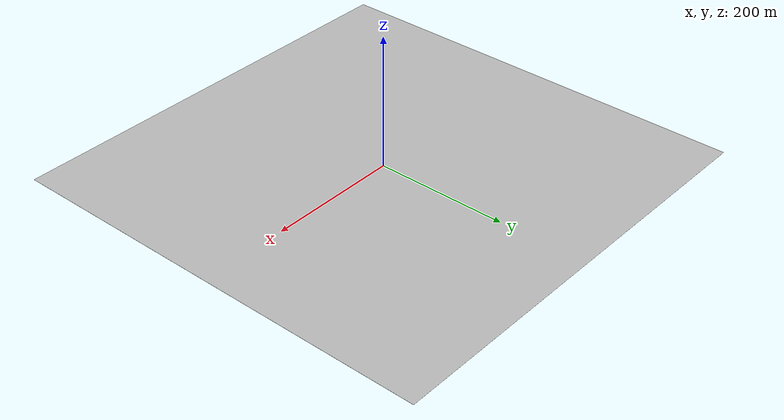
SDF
<?xml version="1.0" ?>
<sdf version="1.5">
  <model name="cycling_scenario">
    <static>true</static>
    <link name="floor">
      <collision name="collision">
        <geometry>
          <box>
            <size>666.08 666.08 .1</size>
          </box>
        </geometry>
      </collision>
      <visual name="visual">
        <cast_shadows>false</cast_shadows>
        <geometry>
          <box>
            <size>666.08 666.08 .1</size>
          </box>
        </geometry>
        <material>
          <script>
            <uri>model://cycling_scenario/materials/scripts</uri>
            <uri>model://cycling_scenario/materials/textures</uri>
            <name>cycling_scenario</name>
          </script>
        </material>
      </visual>
    </link>
  </model>
</sdf>
